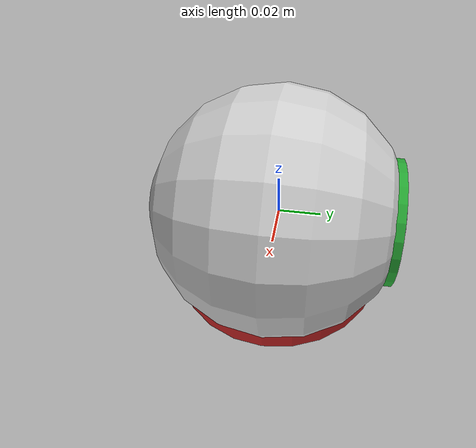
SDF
<?xml version='1.0'?>
<sdf version='1.6'>
  <model name='arrows'>
    <link name='link_010'>
      <pose frame=''>0 0 0 0 -0 0</pose>
      <inertial>
        <pose frame=''>0 0 0 -3e-06 1.57079 -3e-06</pose>
        <mass>0.1</mass>
        <inertia>
          <ixx>0.0001092</ixx>
          <ixy>0</ixy>
          <ixz>0</ixz>
          <iyy>0.0001092</iyy>
          <iyz>0</iyz>
          <izz>6.48e-05</izz>
        </inertia>
      </inertial>
      <self_collide>0</self_collide>
      <kinematic>0</kinematic>
      <velocity_decay/>
      <gravity>0</gravity>
      <visual name='link_010_visual'>
        <pose frame=''>0 0.03 0 3.14159 1.57079 1.57079</pose>
        <geometry>
          <cylinder>
            <length>0.05</length>
            <radius>0.03</radius>
          </cylinder>
        </geometry>
        <material>
          <script>
            <name>Gazebo/Green</name>
            <uri>file://media/materials/scripts/gazebo.material</uri>
          </script>
          <shader type='vertex'>
            <normal_map>__default__</normal_map>
          </shader>
        </material>
        <cast_shadows>1</cast_shadows>
        <transparency>0</transparency>
      </visual>
    </link>
    <link name='link_011'>
      <pose frame=''>0 0 0 0 -0 0</pose>
      <inertial>
        <pose frame=''>0 0 0 -3e-06 1.57079 -3e-06</pose>
        <mass>0.1</mass>
        <inertia>
          <ixx>0.0001092</ixx>
          <ixy>0</ixy>
          <ixz>0</ixz>
          <iyy>0.0001092</iyy>
          <iyz>0</iyz>
          <izz>6.48e-05</izz>
        </inertia>
      </inertial>
      <self_collide>0</self_collide>
      <kinematic>0</kinematic>
      <velocity_decay/>
      <gravity>0</gravity>
      <visual name='link_011_visual'>
        <pose frame=''>0 0 -0.03 3.14159 0 3.14159</pose>
        <geometry>
          <cylinder>
            <length>0.012</length>
            <radius>0.052</radius>
          </cylinder>
        </geometry>
        <material>
          <script>
            <name>Gazebo/Red</name>
            <uri>file://media/materials/scripts/gazebo.material</uri>
          </script>
          <ambient>1 0 0 1</ambient>
          <diffuse>1 0 0 1</diffuse>
          <specular>0.1 0.1 0.1 1</specular>
          <emissive>0 0 0 1</emissive>
          <shader type='vertex'>
            <normal_map>__default__</normal_map>
          </shader>
        </material>
        <cast_shadows>1</cast_shadows>
        <transparency>0</transparency>
      </visual>
    </link>
    <link name='link_012'>
      <pose frame=''>0 0 0 -1.5708 0 0</pose>
      <inertial>
        <pose frame=''>0 0 0 0 -0 0</pose>
        <mass>1</mass>
        <inertia>
          <ixx>0.00144</ixx>
          <ixy>0</ixy>
          <ixz>0</ixz>
          <iyy>0.00144</iyy>
          <iyz>0</iyz>
          <izz>0.00144</izz>
        </inertia>
      </inertial>
      <self_collide>0</self_collide>
      <kinematic>0</kinematic>
      <velocity_decay/>
      <gravity>0</gravity>
      <visual name='link_012_visual'>
        <pose frame=''>0 0 0 0 -0 0</pose>
        <geometry>
          <sphere>
            <radius>0.06</radius>
          </sphere>
        </geometry>
        <material>
          <script>
            <name>Gazebo/LightGrey</name>
            <uri>file://media/materials/scripts/gazebo.material</uri>
          </script>
          <shader type='vertex'>
            <normal_map>__default__</normal_map>
          </shader>
        </material>
        <cast_shadows>1</cast_shadows>
        <transparency>0</transparency>
      </visual>
    </link>
    <static>0</static>
    <allow_auto_disable>1</allow_auto_disable>
  </model>
</sdf>
